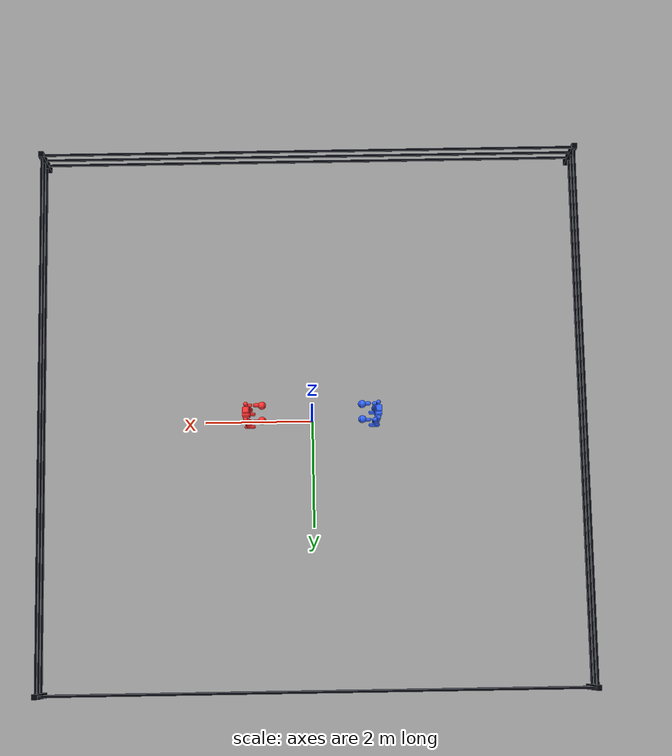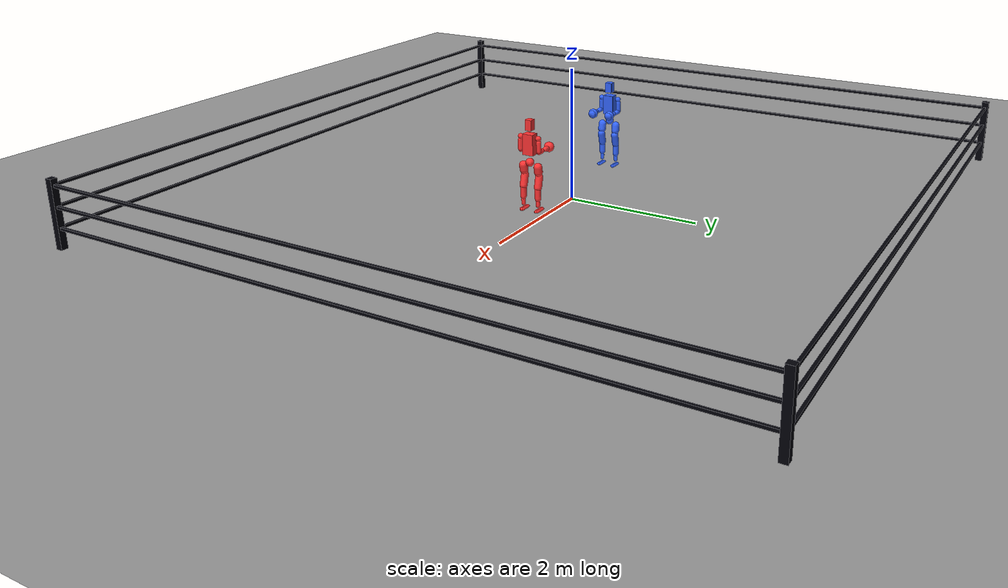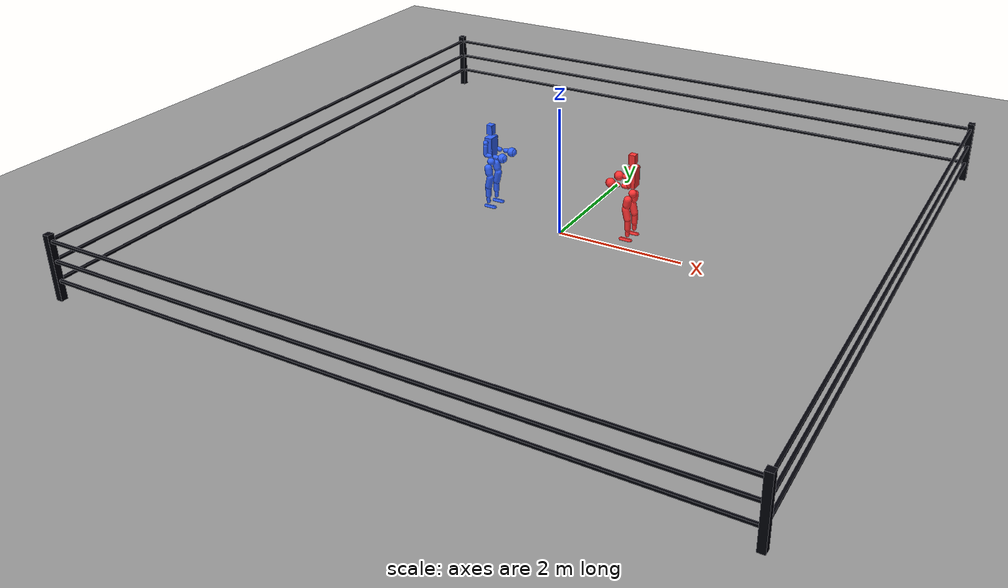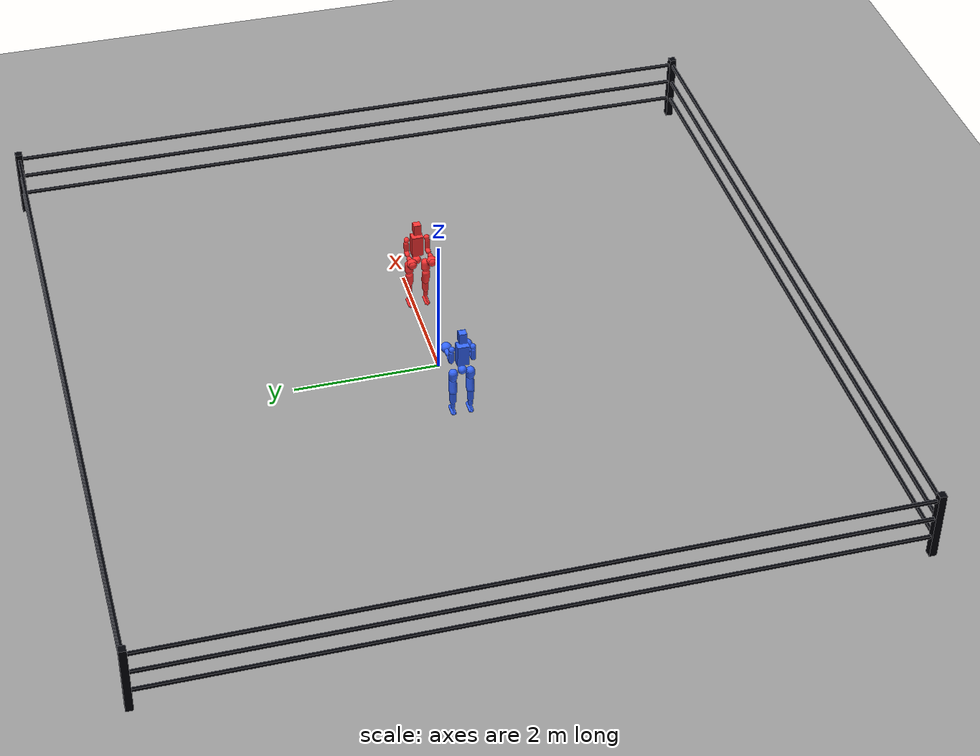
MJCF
<?xml version='1.0' encoding='utf-8'?>
<mujoco model="dual_g1_boxing">
  <compiler angle="radian" autolimits="true" />
  <option timestep="0.0020833333" integrator="implicitfast" cone="pyramidal" impratio="1" tolerance="1e-06" ls_tolerance="0.01" ccd_iterations="50" />
  <default>
    <geom solimp="0.9 0.95 0.001" solref="0.02 1" />
    <default class="g1">
      <geom condim="3" friction="1.0 0.005 0.0001" contype="0" conaffinity="0" />
      <default class="me">
        <geom contype="1" conaffinity="3" rgba="0.2 0.4 1.0 1" material="me" />
      </default>
      <default class="foe">
        <geom contype="2" conaffinity="3" rgba="1.0 0.2 0.2 1" material="foe" />
      </default>
    </default>
  </default>
  <visual>
    <global offwidth="1600" offheight="900" fovy="45" azimuth="90" elevation="-26.57" />
    <quality shadowsize="4096" />
    <headlight ambient="0.65 0.65 0.65" diffuse="0.1 0.1 0.1" specular="0 0 0" />
    <map fogstart="30" fogend="90" shadowclip="2" shadowscale="0.6" />
    <rgba fog="0.953 0.957 0.965 1" haze="0.953 0.957 0.965 1" />
  </visual>
  <statistic center="0 0 0.9" extent="8.113" />
  <asset>
    <texture type="skybox" builtin="flat" rgb1="0.953 0.957 0.965" rgb2="0.953 0.957 0.965" width="32" height="32" />
    <material name="floor" rgba="0.6 0.6 0.6 1" specular="0" shininess="0" reflectance="0" />
    <material name="ring" rgba="0.002 0.004 0.03 1" specular="0" shininess="0" reflectance="0" />
    <material name="me" rgba="0.2 0.4 1.0 1" specular="0" shininess="0" reflectance="0" />
    <material name="foe" rgba="1.0 0.2 0.2 1" specular="0" shininess="0" reflectance="0" />
  </asset>
  <worldbody>
    <light name="sun" directional="true" dir="0.55667 0.32139 -0.76604" diffuse="0.5 0.5 0.5" specular="0 0 0" castshadow="true" />
    <geom name="floor" type="plane" pos="0 0 0" size="200 200 0.1" material="floor" contype="3" conaffinity="3" condim="3" friction="0.5 0.005 0.0001" />
    <geom name="wall_ring0" type="box" pos="0 -5.0 0.3" size="5.0 0.02 0.02" contype="0" conaffinity="0" material="ring" rgba="0.002 0.004 0.03 1" />
    <geom name="wall_ring1" type="box" pos="0 5.0 0.3" size="5.0 0.02 0.02" contype="0" conaffinity="0" material="ring" rgba="0.002 0.004 0.03 1" />
    <geom name="wall_ring2" type="box" pos="-5.0 0 0.3" size="0.02 5.0 0.02" contype="0" conaffinity="0" material="ring" rgba="0.002 0.004 0.03 1" />
    <geom name="wall_ring3" type="box" pos="5.0 0 0.3" size="0.02 5.0 0.02" contype="0" conaffinity="0" material="ring" rgba="0.002 0.004 0.03 1" />
    <geom name="wall_ring4" type="box" pos="0 -5.0 0.6" size="5.0 0.02 0.02" contype="0" conaffinity="0" material="ring" rgba="0.002 0.004 0.03 1" />
    <geom name="wall_ring5" type="box" pos="0 5.0 0.6" size="5.0 0.02 0.02" contype="0" conaffinity="0" material="ring" rgba="0.002 0.004 0.03 1" />
    <geom name="wall_ring6" type="box" pos="-5.0 0 0.6" size="0.02 5.0 0.02" contype="0" conaffinity="0" material="ring" rgba="0.002 0.004 0.03 1" />
    <geom name="wall_ring7" type="box" pos="5.0 0 0.6" size="0.02 5.0 0.02" contype="0" conaffinity="0" material="ring" rgba="0.002 0.004 0.03 1" />
    <geom name="wall_ring8" type="box" pos="0 -5.0 0.9" size="5.0 0.02 0.02" contype="0" conaffinity="0" material="ring" rgba="0.002 0.004 0.03 1" />
    <geom name="wall_ring9" type="box" pos="0 5.0 0.9" size="5.0 0.02 0.02" contype="0" conaffinity="0" material="ring" rgba="0.002 0.004 0.03 1" />
    <geom name="wall_ring10" type="box" pos="-5.0 0 0.9" size="0.02 5.0 0.02" contype="0" conaffinity="0" material="ring" rgba="0.002 0.004 0.03 1" />
    <geom name="wall_ring11" type="box" pos="5.0 0 0.9" size="0.02 5.0 0.02" contype="0" conaffinity="0" material="ring" rgba="0.002 0.004 0.03 1" />
    <geom name="wall_ring12" type="box" pos="-5.0 -5.0 0.5" size="0.05 0.05 0.5" contype="0" conaffinity="0" material="ring" rgba="0.002 0.004 0.03 1" />
    <geom name="wall_ring13" type="box" pos="-5.0 5.0 0.5" size="0.05 0.05 0.5" contype="0" conaffinity="0" material="ring" rgba="0.002 0.004 0.03 1" />
    <geom name="wall_ring14" type="box" pos="5.0 -5.0 0.5" size="0.05 0.05 0.5" contype="0" conaffinity="0" material="ring" rgba="0.002 0.004 0.03 1" />
    <geom name="wall_ring15" type="box" pos="5.0 5.0 0.5" size="0.05 0.05 0.5" contype="0" conaffinity="0" material="ring" rgba="0.002 0.004 0.03 1" />
    <body name="me_pelvis" pos="-1.2 0.0 1.0" childclass="me">
      <freejoint name="me_root" />
      <inertial pos="0 0 -0.07605" quat="1 0 -0.000399148 0" mass="3.813" diaginertia="0.010549 0.0093089 0.0079184" />
      <geom name="me_pelvis_collision" class="me" type="sphere" size="0.06" pos="0 0 -0.07" />
      <body name="me_left_hip_pitch_link" pos="0 0.064452 -0.1027">
        <inertial pos="0.002741 0.047791 -0.02606" quat="0.954862 0.293964 0.0302556 0.030122" mass="1.35" diaginertia="0.00181517 0.00153422 0.00116212" />
        <joint name="me_left_hip_pitch_joint" type="hinge" pos="0 0 0" axis="0 1 0" range="-2.5307 2.8798" limited="true" actuatorfrcrange="-88 88" armature="0.010177520" stiffness="0" damping="0" frictionloss="0" solreflimit="-10000 -10" solimplimit="0.9 0.95 0.001" />
        <body name="me_left_hip_roll_link" pos="0 0.052 -0.030465" quat="0.996179 0 -0.0873386 0">
          <inertial pos="0.029812 -0.001045 -0.087934" quat="0.977808 -1.97119e-05 0.205576 -0.0403793" mass="1.52" diaginertia="0.00254986 0.00241169 0.00148755" />
          <joint name="me_left_hip_roll_joint" type="hinge" pos="0 0 0" axis="1 0 0" range="-0.5236 2.9671" limited="true" actuatorfrcrange="-88 88" armature="0.025101925" stiffness="0" damping="0" frictionloss="0" solreflimit="-10000 -10" solimplimit="0.9 0.95 0.001" />
          <geom name="me_left_hip_collision" class="me" type="capsule" size="0.06" fromto="0.02 0 0 0.02 0 -0.08" />
          <body name="me_left_hip_yaw_link" pos="0.025001 0 -0.12412">
            <inertial pos="-0.057709 -0.010981 -0.15078" quat="0.600598 0.15832 0.223482 0.751181" mass="1.702" diaginertia="0.00776166 0.00717575 0.00160139" />
            <joint name="me_left_hip_yaw_joint" type="hinge" pos="0 0 0" axis="0 0 1" range="-2.7576 2.7576" limited="true" actuatorfrcrange="-88 88" armature="0.010177520" stiffness="0" damping="0" frictionloss="0" solreflimit="-10000 -10" solimplimit="0.9 0.95 0.001" />
            <geom name="me_left_thigh_collision" class="me" type="capsule" size="0.055" fromto="-0.0 0 -0.03 -0.06 0 -0.17" />
            <body name="me_left_knee_link" pos="-0.078273 0.0021489 -0.17734" quat="0.996179 0 0.0873386 0">
              <inertial pos="0.005457 0.003964 -0.12074" quat="0.923418 -0.0327699 0.0158246 0.382067" mass="1.932" diaginertia="0.0113804 0.0112778 0.00146458" />
              <joint name="me_left_knee_joint" type="hinge" pos="0 0 0" axis="0 1 0" range="-0.087267 2.8798" limited="true" actuatorfrcrange="-139 139" armature="0.025101925" stiffness="0" damping="0" frictionloss="0" solreflimit="-10000 -10" solimplimit="0.9 0.95 0.001" />
              <geom name="me_left_shin_collision" class="me" type="capsule" size="0.045" fromto="0.01 0 0 0.01 0 -0.15" />
              <geom name="me_left_linkage_brace_collision" class="me" type="capsule" size="0.03" fromto="0.01 0 -0.2 0.01 0 -0.255" />
              <body name="me_left_ankle_pitch_link" pos="0 -9.4445e-05 -0.30001">
                <inertial pos="-0.007269 0 0.011137" quat="0.603053 0.369225 0.369225 0.603053" mass="0.074" diaginertia="1.89e-05 1.40805e-05 6.9195e-06" />
                <joint name="me_left_ankle_pitch_joint" type="hinge" pos="0 0 0" axis="0 1 0" range="-0.87267 0.5236" limited="true" actuatorfrcrange="-50 50" armature="0.00721945" stiffness="0" damping="0" frictionloss="0" solreflimit="-10000 -10" solimplimit="0.9 0.95 0.001" />
                <body name="me_left_ankle_roll_link" pos="0 0 -0.017558">
                  <inertial pos="0.026505 0 -0.016425" quat="-0.000481092 0.728482 -0.000618967 0.685065" mass="0.608" diaginertia="0.00167218 0.0016161 0.000217621" />
                  <joint name="me_left_ankle_roll_joint" type="hinge" pos="0 0 0" axis="1 0 0" range="-0.2618 0.2618" limited="true" actuatorfrcrange="-50 50" armature="0.00721945" stiffness="0" damping="0" frictionloss="0" solreflimit="-10000 -10" solimplimit="0.9 0.95 0.001" />
                  <geom name="me_left_foot0_collision" class="me" type="capsule" size="0.02" fromto="-0.035 -0.015 -0.015 0.115 -0.015 -0.015" />
                  <geom name="me_left_foot1_collision" class="me" type="capsule" size="0.02" fromto="-0.047 0 -0.015 0.126 0 -0.015" />
                  <geom name="me_left_foot2_collision" class="me" type="capsule" size="0.02" fromto="-0.035 0.015 -0.015 0.115 0.015 -0.015" />
                </body>
              </body>
            </body>
          </body>
        </body>
      </body>
      <body name="me_right_hip_pitch_link" pos="0 -0.064452 -0.1027">
        <inertial pos="0.002741 -0.047791 -0.02606" quat="0.954862 -0.293964 0.0302556 -0.030122" mass="1.35" diaginertia="0.00181517 0.00153422 0.00116212" />
        <joint name="me_right_hip_pitch_joint" type="hinge" pos="0 0 0" axis="0 1 0" range="-2.5307 2.8798" limited="true" actuatorfrcrange="-88 88" armature="0.010177520" stiffness="0" damping="0" frictionloss="0" solreflimit="-10000 -10" solimplimit="0.9 0.95 0.001" />
        <body name="me_right_hip_roll_link" pos="0 -0.052 -0.030465" quat="0.996179 0 -0.0873386 0">
          <inertial pos="0.029812 0.001045 -0.087934" quat="0.977808 1.97119e-05 0.205576 0.0403793" mass="1.52" diaginertia="0.00254986 0.00241169 0.00148755" />
          <joint name="me_right_hip_roll_joint" type="hinge" pos="0 0 0" axis="1 0 0" range="-2.9671 0.5236" limited="true" actuatorfrcrange="-88 88" armature="0.025101925" stiffness="0" damping="0" frictionloss="0" solreflimit="-10000 -10" solimplimit="0.9 0.95 0.001" />
          <geom name="me_right_hip_collision" class="me" type="capsule" size="0.06" fromto="0.02 0 0 0.02 0 -0.08" />
          <body name="me_right_hip_yaw_link" pos="0.025001 0 -0.12412">
            <inertial pos="-0.057709 0.010981 -0.15078" quat="0.751181 0.223482 0.15832 0.600598" mass="1.702" diaginertia="0.00776166 0.00717575 0.00160139" />
            <joint name="me_right_hip_yaw_joint" type="hinge" pos="0 0 0" axis="0 0 1" range="-2.7576 2.7576" limited="true" actuatorfrcrange="-88 88" armature="0.010177520" stiffness="0" damping="0" frictionloss="0" solreflimit="-10000 -10" solimplimit="0.9 0.95 0.001" />
            <geom name="me_right_thigh_collision" class="me" type="capsule" size="0.055" fromto="-0.0 0 -0.03 -0.06 0 -0.17" />
            <body name="me_right_knee_link" pos="-0.078273 -0.0021489 -0.17734" quat="0.996179 0 0.0873386 0">
              <inertial pos="0.005457 -0.003964 -0.12074" quat="0.923439 0.0345276 0.0116333 -0.382012" mass="1.932" diaginertia="0.011374 0.0112843 0.00146452" />
              <joint name="me_right_knee_joint" type="hinge" pos="0 0 0" axis="0 1 0" range="-0.087267 2.8798" limited="true" actuatorfrcrange="-139 139" armature="0.025101925" stiffness="0" damping="0" frictionloss="0" solreflimit="-10000 -10" solimplimit="0.9 0.95 0.001" />
              <geom name="me_right_shin_collision" class="me" type="capsule" size="0.045" fromto="0.01 0 0 0.01 0 -0.15" />
              <geom name="me_right_linkage_brace_collision" class="me" type="capsule" size="0.03" fromto="0.01 0 -0.2 0.01 0 -0.255" />
              <body name="me_right_ankle_pitch_link" pos="0 9.4445e-05 -0.30001">
                <inertial pos="-0.007269 0 0.011137" quat="0.603053 0.369225 0.369225 0.603053" mass="0.074" diaginertia="1.89e-05 1.40805e-05 6.9195e-06" />
                <joint name="me_right_ankle_pitch_joint" type="hinge" pos="0 0 0" axis="0 1 0" range="-0.87267 0.5236" limited="true" actuatorfrcrange="-50 50" armature="0.00721945" stiffness="0" damping="0" frictionloss="0" solreflimit="-10000 -10" solimplimit="0.9 0.95 0.001" />
                <body name="me_right_ankle_roll_link" pos="0 0 -0.017558">
                  <inertial pos="0.026505 0 -0.016425" quat="0.000481092 0.728482 0.000618967 0.685065" mass="0.608" diaginertia="0.00167218 0.0016161 0.000217621" />
                  <joint name="me_right_ankle_roll_joint" type="hinge" pos="0 0 0" axis="1 0 0" range="-0.2618 0.2618" limited="true" actuatorfrcrange="-50 50" armature="0.00721945" stiffness="0" damping="0" frictionloss="0" solreflimit="-10000 -10" solimplimit="0.9 0.95 0.001" />
                  <geom name="me_right_foot0_collision" class="me" type="capsule" size="0.02" fromto="-0.035 -0.015 -0.015 0.115 -0.015 -0.015" />
                  <geom name="me_right_foot1_collision" class="me" type="capsule" size="0.02" fromto="-0.047 0 -0.015 0.126 0 -0.015" />
                  <geom name="me_right_foot2_collision" class="me" type="capsule" size="0.02" fromto="-0.035 0.015 -0.015 0.115 0.015 -0.015" />
                </body>
              </body>
            </body>
          </body>
        </body>
      </body>
      <body name="me_waist_yaw_link">
        <inertial pos="0.003964 0 0.018769" quat="-0.0178291 0.628464 0.0282471 0.777121" mass="0.244" diaginertia="0.000158561 0.000124229 9.67669e-05" />
        <joint name="me_waist_yaw_joint" type="hinge" pos="0 0 0" axis="0 0 1" range="-2.618 2.618" limited="true" actuatorfrcrange="-88 88" armature="0.010177520" stiffness="0" damping="0" frictionloss="0" solreflimit="-10000 -10" solimplimit="0.9 0.95 0.001" />
        <body name="me_waist_roll_link" pos="-0.0039635 0 0.035">
          <inertial pos="0 -0.000236 0.010111" quat="0.99979 0.020492 0 0" mass="0.047" diaginertia="7.515e-06 6.40206e-06 3.98394e-06" />
          <joint name="me_waist_roll_joint" type="hinge" pos="0 0 0" axis="1 0 0" range="-0.52 0.52" limited="true" actuatorfrcrange="-50 50" armature="0.00721945" stiffness="0" damping="0" frictionloss="0" solreflimit="-10000 -10" solimplimit="0.9 0.95 0.001" />
          <body name="me_torso_link" pos="0 0 0.019">
            <inertial pos="0.00331658 0.000261533 0.179856" quat="0.999831 0.000376204 0.0179895 -0.00377704" mass="0.9598" diaginertia="0.012407 0.0111951 0.00325382" />
            <joint name="me_waist_pitch_joint" type="hinge" pos="0 0 0" axis="0 1 0" range="-0.52 0.52" limited="true" actuatorfrcrange="-50 50" armature="0.00721945" stiffness="0" damping="0" frictionloss="0" solreflimit="-10000 -10" solimplimit="0.9 0.95 0.001" />
            <geom name="me_torso_collision" class="me" type="box" size="0.0065 0.08 0.15" pos="0.0685 0 0.14" />
            <body name="me_head_link" pos="0.015 0 0.43">
              <inertial pos="0 0 0" mass="0.01" diaginertia="1.44e-05 1.44e-05 1.44e-05" />
              <geom name="me_head_collision" class="me" type="box" size="0.005 0.05 0.075" pos="0.045 0 -0.015" />
              <body name="me_head_back_link" pos="0 0 0">
                <inertial pos="0 0 0" mass="0.09" diaginertia="0.0001296 0.0001296 0.0001296" />
                <geom name="me_head_collision_back" class="me" type="box" size="0.045 0.05 0.075" pos="-0.005 0 -0.015" rgba="0.2 0.4 1.0 1" />
              </body>
            </body>
            <body name="me_left_shoulder_pitch_link" pos="0.0039563 0.10022 0.23778" quat="0.990264 0.139201 1.38722e-05 -9.86868e-05">
              <inertial pos="0 0.035892 -0.011628" quat="0.654152 0.0130458 -0.326267 0.68225" mass="0.718" diaginertia="0.000465864 0.000432842 0.000406394" />
              <joint name="me_left_shoulder_pitch_joint" type="hinge" pos="0 0 0" axis="0 1 0" range="-3.0892 2.6704" limited="true" actuatorfrcrange="-25 25" armature="0.003609725" stiffness="0" damping="0" frictionloss="0" solreflimit="-10000 -10" solimplimit="0.9 0.95 0.001" />
              <body name="me_left_shoulder_roll_link" pos="0 0.038 -0.013831" quat="0.990268 -0.139172 0 0">
                <inertial pos="-0.000227 0.00727 -0.063243" quat="0.701256 -0.0196223 -0.00710317 0.712604" mass="0.643" diaginertia="0.000691311 0.000618011 0.000388977" />
                <joint name="me_left_shoulder_roll_joint" type="hinge" pos="0 0 0" axis="1 0 0" range="-1.5882 2.2515" limited="true" actuatorfrcrange="-25 25" armature="0.003609725" stiffness="0" damping="0" frictionloss="0" solreflimit="-10000 -10" solimplimit="0.9 0.95 0.001" />
                <geom name="me_left_shoulder_roll_collision" class="me" type="sphere" size="0.04" />
                <body name="me_left_shoulder_yaw_link" pos="0 0.00624 -0.1032">
                  <inertial pos="0.010773 -0.002949 -0.072009" quat="0.716879 -0.0964829 -0.0679942 0.687134" mass="1.835" diaginertia="0.00265467 0.00258042 0.00100165" />
                  <joint name="me_left_shoulder_yaw_joint" type="hinge" pos="0 0 0" axis="0 0 1" range="-2.618 2.618" limited="true" actuatorfrcrange="-25 25" armature="0.003609725" stiffness="0" damping="0" frictionloss="0" solreflimit="-10000 -10" solimplimit="0.9 0.95 0.001" />
                  <geom name="me_left_shoulder_yaw_collision" class="me" type="capsule" size="0.035" fromto="0 0 -0.08 0 0 0.05" />
                  <body name="me_left_elbow_link" pos="0.015783 0 -0.080518">
                    <inertial pos="0.064956 0.004454 -0.010062" quat="0.541765 0.636132 0.388821 0.388129" mass="1.5" diaginertia="0.00110759 0.00105403 0.000648382" />
                    <joint name="me_left_elbow_joint" type="hinge" pos="0 0 0" axis="0 1 0" range="-1.0472 2.0944" limited="true" actuatorfrcrange="-25 25" armature="0.003609725" stiffness="0" damping="0" frictionloss="0" solreflimit="-10000 -10" solimplimit="0.9 0.95 0.001" />
                    <geom name="me_left_elbow_yaw_collision" class="me" type="capsule" size="0.035" fromto="-0.01 0 -0.01 0.06 0 -0.01" />
                    <body name="me_left_wrist_roll_link" pos="0.1 0.00188791 -0.01">
                      <inertial pos="0.0171394 0.000537591 4.8864e-07" quat="0.575338 0.411667 -0.574906 0.411094" mass="0.085445" diaginertia="5.48211e-05 4.96646e-05 3.57798e-05" />
                      <body name="me_left_wrist_pitch_link" pos="0.038 0 0">
                        <inertial pos="0.0229999 -0.00111685 -0.00111658" quat="0.249998 0.661363 0.293036 0.643608" mass="1.21012" diaginertia="0.00107588 0.00107468 0.00041162" />
                        <geom name="me_left_wrist_collision" class="me" type="capsule" size="0.035" fromto="0.01 0 0 0.06 0 0" />
                        <body name="me_left_wrist_yaw_link" pos="0.046 0 0">
                          <inertial pos="0.0708244 0.000191745 0.00161742" quat="0.510571 0.526295 0.468078 0.493188" mass="0.31822" diaginertia="0.00080764 0.00069999 0.000184457" />
                          <geom name="me_left_hand_collision" class="me" type="sphere" size="0.07" pos="0.095 -0.01 0" rgba="0.2 0.4 1.0 1" />
                          <body name="me_left_wrist_yaw_back_link" pos="0 0 0">
                            <inertial pos="0.0708244 0.000191745 0.00161742" quat="0.510571 0.526295 0.468078 0.493188" mass="0.31822" diaginertia="0.00080764 0.00069999 0.000184457" />
                            <geom name="me_left_hand_collision_back" class="me" type="sphere" size="0.072083" pos="0.091 -0.01 0" rgba="0.2 0.4 1.0 1" />
                          </body>
                        </body>
                      </body>
                    </body>
                  </body>
                </body>
              </body>
            </body>
            <body name="me_right_shoulder_pitch_link" pos="0.0039563 -0.10021 0.23778" quat="0.990264 -0.139201 1.38722e-05 9.86868e-05">
              <inertial pos="0 -0.035892 -0.011628" quat="0.68225 -0.326267 0.0130458 0.654152" mass="0.718" diaginertia="0.000465864 0.000432842 0.000406394" />
              <joint name="me_right_shoulder_pitch_joint" type="hinge" pos="0 0 0" axis="0 1 0" range="-3.0892 2.6704" limited="true" actuatorfrcrange="-25 25" armature="0.003609725" stiffness="0" damping="0" frictionloss="0" solreflimit="-10000 -10" solimplimit="0.9 0.95 0.001" />
              <body name="me_right_shoulder_roll_link" pos="0 -0.038 -0.013831" quat="0.990268 0.139172 0 0">
                <inertial pos="-0.000227 -0.00727 -0.063243" quat="0.712604 -0.00710317 -0.0196223 0.701256" mass="0.643" diaginertia="0.000691311 0.000618011 0.000388977" />
                <joint name="me_right_shoulder_roll_joint" type="hinge" pos="0 0 0" axis="1 0 0" range="-2.2515 1.5882" limited="true" actuatorfrcrange="-25 25" armature="0.003609725" stiffness="0" damping="0" frictionloss="0" solreflimit="-10000 -10" solimplimit="0.9 0.95 0.001" />
                <geom name="me_right_shoulder_roll_collision" class="me" type="sphere" size="0.04" />
                <body name="me_right_shoulder_yaw_link" pos="0 -0.00624 -0.1032">
                  <inertial pos="0.010773 0.002949 -0.072009" quat="0.687134 -0.0679942 -0.0964829 0.716879" mass="1.835" diaginertia="0.00265467 0.00258042 0.00100165" />
                  <joint name="me_right_shoulder_yaw_joint" type="hinge" pos="0 0 0" axis="0 0 1" range="-2.618 2.618" limited="true" actuatorfrcrange="-25 25" armature="0.003609725" stiffness="0" damping="0" frictionloss="0" solreflimit="-10000 -10" solimplimit="0.9 0.95 0.001" />
                  <geom name="me_right_shoulder_yaw_collision" class="me" type="capsule" size="0.035" fromto="0 0 -0.08 0 0 0.05" />
                  <body name="me_right_elbow_link" pos="0.015783 0 -0.080518">
                    <inertial pos="0.064956 -0.004454 -0.010062" quat="0.388129 0.388821 0.636132 0.541765" mass="1.5" diaginertia="0.00110759 0.00105403 0.000648382" />
                    <joint name="me_right_elbow_joint" type="hinge" pos="0 0 0" axis="0 1 0" range="-1.0472 2.0944" limited="true" actuatorfrcrange="-25 25" armature="0.003609725" stiffness="0" damping="0" frictionloss="0" solreflimit="-10000 -10" solimplimit="0.9 0.95 0.001" />
                    <geom name="me_right_elbow_yaw_collision" class="me" type="capsule" size="0.035" fromto="-0.01 0 -0.01 0.06 0 -0.01" />
                    <body name="me_right_wrist_roll_link" pos="0.1 -0.00188791 -0.01">
                      <inertial pos="0.0171394 -0.000537591 4.8864e-07" quat="0.411667 0.575338 -0.411094 0.574906" mass="0.085445" diaginertia="5.48211e-05 4.96646e-05 3.57798e-05" />
                      <body name="me_right_wrist_pitch_link" pos="0.038 0 0">
                        <inertial pos="0.0229999 0.00111685 -0.00111658" quat="0.643608 0.293036 0.661363 0.249998" mass="1.21012" diaginertia="0.00107588 0.00107468 0.00041162" />
                        <geom name="me_right_wrist_collision" class="me" type="capsule" size="0.035" fromto="0.01 0 0 0.06 0 0" />
                        <body name="me_right_wrist_yaw_link" pos="0.046 0 0">
                          <inertial pos="0.0708244 -0.000191745 0.00161742" quat="0.493188 0.468078 0.526295 0.510571" mass="0.31822" diaginertia="0.00080764 0.00069999 0.000184457" />
                          <geom name="me_right_hand_collision" class="me" type="sphere" size="0.07" pos="0.095 0.01 0" rgba="0.2 0.4 1.0 1" />
                          <body name="me_right_wrist_yaw_back_link" pos="0 0 0">
                            <inertial pos="0.0708244 -0.000191745 0.00161742" quat="0.493188 0.468078 0.526295 0.510571" mass="0.31822" diaginertia="0.00080764 0.00069999 0.000184457" />
                            <geom name="me_right_hand_collision_back" class="me" type="sphere" size="0.072083" pos="0.091 0.01 0" rgba="0.2 0.4 1.0 1" />
                          </body>
                        </body>
                      </body>
                    </body>
                  </body>
                </body>
              </body>
            </body>
            <body name="me_torso_back_link" pos="0 0 0">
              <inertial pos="0.00331658 0.000261533 0.179856" quat="0.999831 0.000376204 0.0179895 -0.00377704" mass="8.6382" diaginertia="0.111663 0.100756 0.0292844" />
              <geom name="me_torso_collision_back" class="me" type="box" size="0.0585 0.08 0.15" pos="0.0035 0 0.14" rgba="0.2 0.4 1.0 1" />
            </body>
          </body>
        </body>
      </body>
    </body>
    <body name="foe_pelvis" pos="1.2 0.0 1.0" childclass="foe" quat="0 0 0 1">
      <freejoint name="foe_root" />
      <inertial pos="0 0 -0.07605" quat="1 0 -0.000399148 0" mass="3.813" diaginertia="0.010549 0.0093089 0.0079184" />
      <geom name="foe_pelvis_collision" class="foe" type="sphere" size="0.06" pos="0 0 -0.07" />
      <body name="foe_left_hip_pitch_link" pos="0 0.064452 -0.1027">
        <inertial pos="0.002741 0.047791 -0.02606" quat="0.954862 0.293964 0.0302556 0.030122" mass="1.35" diaginertia="0.00181517 0.00153422 0.00116212" />
        <joint name="foe_left_hip_pitch_joint" type="hinge" pos="0 0 0" axis="0 1 0" range="-2.5307 2.8798" limited="true" actuatorfrcrange="-88 88" armature="0.010177520" stiffness="0" damping="0" frictionloss="0" solreflimit="-10000 -10" solimplimit="0.9 0.95 0.001" />
        <body name="foe_left_hip_roll_link" pos="0 0.052 -0.030465" quat="0.996179 0 -0.0873386 0">
          <inertial pos="0.029812 -0.001045 -0.087934" quat="0.977808 -1.97119e-05 0.205576 -0.0403793" mass="1.52" diaginertia="0.00254986 0.00241169 0.00148755" />
          <joint name="foe_left_hip_roll_joint" type="hinge" pos="0 0 0" axis="1 0 0" range="-0.5236 2.9671" limited="true" actuatorfrcrange="-88 88" armature="0.025101925" stiffness="0" damping="0" frictionloss="0" solreflimit="-10000 -10" solimplimit="0.9 0.95 0.001" />
          <geom name="foe_left_hip_collision" class="foe" type="capsule" size="0.06" fromto="0.02 0 0 0.02 0 -0.08" />
          <body name="foe_left_hip_yaw_link" pos="0.025001 0 -0.12412">
            <inertial pos="-0.057709 -0.010981 -0.15078" quat="0.600598 0.15832 0.223482 0.751181" mass="1.702" diaginertia="0.00776166 0.00717575 0.00160139" />
            <joint name="foe_left_hip_yaw_joint" type="hinge" pos="0 0 0" axis="0 0 1" range="-2.7576 2.7576" limited="true" actuatorfrcrange="-88 88" armature="0.010177520" stiffness="0" damping="0" frictionloss="0" solreflimit="-10000 -10" solimplimit="0.9 0.95 0.001" />
            <geom name="foe_left_thigh_collision" class="foe" type="capsule" size="0.055" fromto="-0.0 0 -0.03 -0.06 0 -0.17" />
            <body name="foe_left_knee_link" pos="-0.078273 0.0021489 -0.17734" quat="0.996179 0 0.0873386 0">
              <inertial pos="0.005457 0.003964 -0.12074" quat="0.923418 -0.0327699 0.0158246 0.382067" mass="1.932" diaginertia="0.0113804 0.0112778 0.00146458" />
              <joint name="foe_left_knee_joint" type="hinge" pos="0 0 0" axis="0 1 0" range="-0.087267 2.8798" limited="true" actuatorfrcrange="-139 139" armature="0.025101925" stiffness="0" damping="0" frictionloss="0" solreflimit="-10000 -10" solimplimit="0.9 0.95 0.001" />
              <geom name="foe_left_shin_collision" class="foe" type="capsule" size="0.045" fromto="0.01 0 0 0.01 0 -0.15" />
              <geom name="foe_left_linkage_brace_collision" class="foe" type="capsule" size="0.03" fromto="0.01 0 -0.2 0.01 0 -0.255" />
              <body name="foe_left_ankle_pitch_link" pos="0 -9.4445e-05 -0.30001">
                <inertial pos="-0.007269 0 0.011137" quat="0.603053 0.369225 0.369225 0.603053" mass="0.074" diaginertia="1.89e-05 1.40805e-05 6.9195e-06" />
                <joint name="foe_left_ankle_pitch_joint" type="hinge" pos="0 0 0" axis="0 1 0" range="-0.87267 0.5236" limited="true" actuatorfrcrange="-50 50" armature="0.00721945" stiffness="0" damping="0" frictionloss="0" solreflimit="-10000 -10" solimplimit="0.9 0.95 0.001" />
                <body name="foe_left_ankle_roll_link" pos="0 0 -0.017558">
                  <inertial pos="0.026505 0 -0.016425" quat="-0.000481092 0.728482 -0.000618967 0.685065" mass="0.608" diaginertia="0.00167218 0.0016161 0.000217621" />
                  <joint name="foe_left_ankle_roll_joint" type="hinge" pos="0 0 0" axis="1 0 0" range="-0.2618 0.2618" limited="true" actuatorfrcrange="-50 50" armature="0.00721945" stiffness="0" damping="0" frictionloss="0" solreflimit="-10000 -10" solimplimit="0.9 0.95 0.001" />
                  <geom name="foe_left_foot0_collision" class="foe" type="capsule" size="0.02" fromto="-0.035 -0.015 -0.015 0.115 -0.015 -0.015" />
                  <geom name="foe_left_foot1_collision" class="foe" type="capsule" size="0.02" fromto="-0.047 0 -0.015 0.126 0 -0.015" />
                  <geom name="foe_left_foot2_collision" class="foe" type="capsule" size="0.02" fromto="-0.035 0.015 -0.015 0.115 0.015 -0.015" />
                </body>
              </body>
            </body>
          </body>
        </body>
      </body>
      <body name="foe_right_hip_pitch_link" pos="0 -0.064452 -0.1027">
        <inertial pos="0.002741 -0.047791 -0.02606" quat="0.954862 -0.293964 0.0302556 -0.030122" mass="1.35" diaginertia="0.00181517 0.00153422 0.00116212" />
        <joint name="foe_right_hip_pitch_joint" type="hinge" pos="0 0 0" axis="0 1 0" range="-2.5307 2.8798" limited="true" actuatorfrcrange="-88 88" armature="0.010177520" stiffness="0" damping="0" frictionloss="0" solreflimit="-10000 -10" solimplimit="0.9 0.95 0.001" />
        <body name="foe_right_hip_roll_link" pos="0 -0.052 -0.030465" quat="0.996179 0 -0.0873386 0">
          <inertial pos="0.029812 0.001045 -0.087934" quat="0.977808 1.97119e-05 0.205576 0.0403793" mass="1.52" diaginertia="0.00254986 0.00241169 0.00148755" />
          <joint name="foe_right_hip_roll_joint" type="hinge" pos="0 0 0" axis="1 0 0" range="-2.9671 0.5236" limited="true" actuatorfrcrange="-88 88" armature="0.025101925" stiffness="0" damping="0" frictionloss="0" solreflimit="-10000 -10" solimplimit="0.9 0.95 0.001" />
          <geom name="foe_right_hip_collision" class="foe" type="capsule" size="0.06" fromto="0.02 0 0 0.02 0 -0.08" />
          <body name="foe_right_hip_yaw_link" pos="0.025001 0 -0.12412">
            <inertial pos="-0.057709 0.010981 -0.15078" quat="0.751181 0.223482 0.15832 0.600598" mass="1.702" diaginertia="0.00776166 0.00717575 0.00160139" />
            <joint name="foe_right_hip_yaw_joint" type="hinge" pos="0 0 0" axis="0 0 1" range="-2.7576 2.7576" limited="true" actuatorfrcrange="-88 88" armature="0.010177520" stiffness="0" damping="0" frictionloss="0" solreflimit="-10000 -10" solimplimit="0.9 0.95 0.001" />
            <geom name="foe_right_thigh_collision" class="foe" type="capsule" size="0.055" fromto="-0.0 0 -0.03 -0.06 0 -0.17" />
            <body name="foe_right_knee_link" pos="-0.078273 -0.0021489 -0.17734" quat="0.996179 0 0.0873386 0">
              <inertial pos="0.005457 -0.003964 -0.12074" quat="0.923439 0.0345276 0.0116333 -0.382012" mass="1.932" diaginertia="0.011374 0.0112843 0.00146452" />
              <joint name="foe_right_knee_joint" type="hinge" pos="0 0 0" axis="0 1 0" range="-0.087267 2.8798" limited="true" actuatorfrcrange="-139 139" armature="0.025101925" stiffness="0" damping="0" frictionloss="0" solreflimit="-10000 -10" solimplimit="0.9 0.95 0.001" />
              <geom name="foe_right_shin_collision" class="foe" type="capsule" size="0.045" fromto="0.01 0 0 0.01 0 -0.15" />
              <geom name="foe_right_linkage_brace_collision" class="foe" type="capsule" size="0.03" fromto="0.01 0 -0.2 0.01 0 -0.255" />
              <body name="foe_right_ankle_pitch_link" pos="0 9.4445e-05 -0.30001">
                <inertial pos="-0.007269 0 0.011137" quat="0.603053 0.369225 0.369225 0.603053" mass="0.074" diaginertia="1.89e-05 1.40805e-05 6.9195e-06" />
                <joint name="foe_right_ankle_pitch_joint" type="hinge" pos="0 0 0" axis="0 1 0" range="-0.87267 0.5236" limited="true" actuatorfrcrange="-50 50" armature="0.00721945" stiffness="0" damping="0" frictionloss="0" solreflimit="-10000 -10" solimplimit="0.9 0.95 0.001" />
                <body name="foe_right_ankle_roll_link" pos="0 0 -0.017558">
                  <inertial pos="0.026505 0 -0.016425" quat="0.000481092 0.728482 0.000618967 0.685065" mass="0.608" diaginertia="0.00167218 0.0016161 0.000217621" />
                  <joint name="foe_right_ankle_roll_joint" type="hinge" pos="0 0 0" axis="1 0 0" range="-0.2618 0.2618" limited="true" actuatorfrcrange="-50 50" armature="0.00721945" stiffness="0" damping="0" frictionloss="0" solreflimit="-10000 -10" solimplimit="0.9 0.95 0.001" />
                  <geom name="foe_right_foot0_collision" class="foe" type="capsule" size="0.02" fromto="-0.035 -0.015 -0.015 0.115 -0.015 -0.015" />
                  <geom name="foe_right_foot1_collision" class="foe" type="capsule" size="0.02" fromto="-0.047 0 -0.015 0.126 0 -0.015" />
                  <geom name="foe_right_foot2_collision" class="foe" type="capsule" size="0.02" fromto="-0.035 0.015 -0.015 0.115 0.015 -0.015" />
                </body>
              </body>
            </body>
          </body>
        </body>
      </body>
      <body name="foe_waist_yaw_link">
        <inertial pos="0.003964 0 0.018769" quat="-0.0178291 0.628464 0.0282471 0.777121" mass="0.244" diaginertia="0.000158561 0.000124229 9.67669e-05" />
        <joint name="foe_waist_yaw_joint" type="hinge" pos="0 0 0" axis="0 0 1" range="-2.618 2.618" limited="true" actuatorfrcrange="-88 88" armature="0.010177520" stiffness="0" damping="0" frictionloss="0" solreflimit="-10000 -10" solimplimit="0.9 0.95 0.001" />
        <body name="foe_waist_roll_link" pos="-0.0039635 0 0.035">
          <inertial pos="0 -0.000236 0.010111" quat="0.99979 0.020492 0 0" mass="0.047" diaginertia="7.515e-06 6.40206e-06 3.98394e-06" />
          <joint name="foe_waist_roll_joint" type="hinge" pos="0 0 0" axis="1 0 0" range="-0.52 0.52" limited="true" actuatorfrcrange="-50 50" armature="0.00721945" stiffness="0" damping="0" frictionloss="0" solreflimit="-10000 -10" solimplimit="0.9 0.95 0.001" />
          <body name="foe_torso_link" pos="0 0 0.019">
            <inertial pos="0.00331658 0.000261533 0.179856" quat="0.999831 0.000376204 0.0179895 -0.00377704" mass="0.9598" diaginertia="0.012407 0.0111951 0.00325382" />
            <joint name="foe_waist_pitch_joint" type="hinge" pos="0 0 0" axis="0 1 0" range="-0.52 0.52" limited="true" actuatorfrcrange="-50 50" armature="0.00721945" stiffness="0" damping="0" frictionloss="0" solreflimit="-10000 -10" solimplimit="0.9 0.95 0.001" />
            <geom name="foe_torso_collision" class="foe" type="box" size="0.0065 0.08 0.15" pos="0.0685 0 0.14" />
            <body name="foe_head_link" pos="0.015 0 0.43">
              <inertial pos="0 0 0" mass="0.01" diaginertia="1.44e-05 1.44e-05 1.44e-05" />
              <geom name="foe_head_collision" class="foe" type="box" size="0.005 0.05 0.075" pos="0.045 0 -0.015" />
              <body name="foe_head_back_link" pos="0 0 0">
                <inertial pos="0 0 0" mass="0.09" diaginertia="0.0001296 0.0001296 0.0001296" />
                <geom name="foe_head_collision_back" class="foe" type="box" size="0.045 0.05 0.075" pos="-0.005 0 -0.015" rgba="1.0 0.2 0.2 1" />
              </body>
            </body>
            <body name="foe_left_shoulder_pitch_link" pos="0.0039563 0.10022 0.23778" quat="0.990264 0.139201 1.38722e-05 -9.86868e-05">
              <inertial pos="0 0.035892 -0.011628" quat="0.654152 0.0130458 -0.326267 0.68225" mass="0.718" diaginertia="0.000465864 0.000432842 0.000406394" />
              <joint name="foe_left_shoulder_pitch_joint" type="hinge" pos="0 0 0" axis="0 1 0" range="-3.0892 2.6704" limited="true" actuatorfrcrange="-25 25" armature="0.003609725" stiffness="0" damping="0" frictionloss="0" solreflimit="-10000 -10" solimplimit="0.9 0.95 0.001" />
              <body name="foe_left_shoulder_roll_link" pos="0 0.038 -0.013831" quat="0.990268 -0.139172 0 0">
                <inertial pos="-0.000227 0.00727 -0.063243" quat="0.701256 -0.0196223 -0.00710317 0.712604" mass="0.643" diaginertia="0.000691311 0.000618011 0.000388977" />
                <joint name="foe_left_shoulder_roll_joint" type="hinge" pos="0 0 0" axis="1 0 0" range="-1.5882 2.2515" limited="true" actuatorfrcrange="-25 25" armature="0.003609725" stiffness="0" damping="0" frictionloss="0" solreflimit="-10000 -10" solimplimit="0.9 0.95 0.001" />
                <geom name="foe_left_shoulder_roll_collision" class="foe" type="sphere" size="0.04" />
                <body name="foe_left_shoulder_yaw_link" pos="0 0.00624 -0.1032">
                  <inertial pos="0.010773 -0.002949 -0.072009" quat="0.716879 -0.0964829 -0.0679942 0.687134" mass="1.835" diaginertia="0.00265467 0.00258042 0.00100165" />
                  <joint name="foe_left_shoulder_yaw_joint" type="hinge" pos="0 0 0" axis="0 0 1" range="-2.618 2.618" limited="true" actuatorfrcrange="-25 25" armature="0.003609725" stiffness="0" damping="0" frictionloss="0" solreflimit="-10000 -10" solimplimit="0.9 0.95 0.001" />
                  <geom name="foe_left_shoulder_yaw_collision" class="foe" type="capsule" size="0.035" fromto="0 0 -0.08 0 0 0.05" />
                  <body name="foe_left_elbow_link" pos="0.015783 0 -0.080518">
                    <inertial pos="0.064956 0.004454 -0.010062" quat="0.541765 0.636132 0.388821 0.388129" mass="1.5" diaginertia="0.00110759 0.00105403 0.000648382" />
                    <joint name="foe_left_elbow_joint" type="hinge" pos="0 0 0" axis="0 1 0" range="-1.0472 2.0944" limited="true" actuatorfrcrange="-25 25" armature="0.003609725" stiffness="0" damping="0" frictionloss="0" solreflimit="-10000 -10" solimplimit="0.9 0.95 0.001" />
                    <geom name="foe_left_elbow_yaw_collision" class="foe" type="capsule" size="0.035" fromto="-0.01 0 -0.01 0.06 0 -0.01" />
                    <body name="foe_left_wrist_roll_link" pos="0.1 0.00188791 -0.01">
                      <inertial pos="0.0171394 0.000537591 4.8864e-07" quat="0.575338 0.411667 -0.574906 0.411094" mass="0.085445" diaginertia="5.48211e-05 4.96646e-05 3.57798e-05" />
                      <body name="foe_left_wrist_pitch_link" pos="0.038 0 0">
                        <inertial pos="0.0229999 -0.00111685 -0.00111658" quat="0.249998 0.661363 0.293036 0.643608" mass="1.21012" diaginertia="0.00107588 0.00107468 0.00041162" />
                        <geom name="foe_left_wrist_collision" class="foe" type="capsule" size="0.035" fromto="0.01 0 0 0.06 0 0" />
                        <body name="foe_left_wrist_yaw_link" pos="0.046 0 0">
                          <inertial pos="0.0708244 0.000191745 0.00161742" quat="0.510571 0.526295 0.468078 0.493188" mass="0.31822" diaginertia="0.00080764 0.00069999 0.000184457" />
                          <geom name="foe_left_hand_collision" class="foe" type="sphere" size="0.07" pos="0.095 -0.01 0" rgba="1.0 0.2 0.2 1" />
                          <body name="foe_left_wrist_yaw_back_link" pos="0 0 0">
                            <inertial pos="0.0708244 0.000191745 0.00161742" quat="0.510571 0.526295 0.468078 0.493188" mass="0.31822" diaginertia="0.00080764 0.00069999 0.000184457" />
                            <geom name="foe_left_hand_collision_back" class="foe" type="sphere" size="0.072083" pos="0.091 -0.01 0" rgba="1.0 0.2 0.2 1" />
                          </body>
                        </body>
                      </body>
                    </body>
                  </body>
                </body>
              </body>
            </body>
            <body name="foe_right_shoulder_pitch_link" pos="0.0039563 -0.10021 0.23778" quat="0.990264 -0.139201 1.38722e-05 9.86868e-05">
              <inertial pos="0 -0.035892 -0.011628" quat="0.68225 -0.326267 0.0130458 0.654152" mass="0.718" diaginertia="0.000465864 0.000432842 0.000406394" />
              <joint name="foe_right_shoulder_pitch_joint" type="hinge" pos="0 0 0" axis="0 1 0" range="-3.0892 2.6704" limited="true" actuatorfrcrange="-25 25" armature="0.003609725" stiffness="0" damping="0" frictionloss="0" solreflimit="-10000 -10" solimplimit="0.9 0.95 0.001" />
              <body name="foe_right_shoulder_roll_link" pos="0 -0.038 -0.013831" quat="0.990268 0.139172 0 0">
                <inertial pos="-0.000227 -0.00727 -0.063243" quat="0.712604 -0.00710317 -0.0196223 0.701256" mass="0.643" diaginertia="0.000691311 0.000618011 0.000388977" />
                <joint name="foe_right_shoulder_roll_joint" type="hinge" pos="0 0 0" axis="1 0 0" range="-2.2515 1.5882" limited="true" actuatorfrcrange="-25 25" armature="0.003609725" stiffness="0" damping="0" frictionloss="0" solreflimit="-10000 -10" solimplimit="0.9 0.95 0.001" />
                <geom name="foe_right_shoulder_roll_collision" class="foe" type="sphere" size="0.04" />
                <body name="foe_right_shoulder_yaw_link" pos="0 -0.00624 -0.1032">
                  <inertial pos="0.010773 0.002949 -0.072009" quat="0.687134 -0.0679942 -0.0964829 0.716879" mass="1.835" diaginertia="0.00265467 0.00258042 0.00100165" />
                  <joint name="foe_right_shoulder_yaw_joint" type="hinge" pos="0 0 0" axis="0 0 1" range="-2.618 2.618" limited="true" actuatorfrcrange="-25 25" armature="0.003609725" stiffness="0" damping="0" frictionloss="0" solreflimit="-10000 -10" solimplimit="0.9 0.95 0.001" />
                  <geom name="foe_right_shoulder_yaw_collision" class="foe" type="capsule" size="0.035" fromto="0 0 -0.08 0 0 0.05" />
                  <body name="foe_right_elbow_link" pos="0.015783 0 -0.080518">
                    <inertial pos="0.064956 -0.004454 -0.010062" quat="0.388129 0.388821 0.636132 0.541765" mass="1.5" diaginertia="0.00110759 0.00105403 0.000648382" />
                    <joint name="foe_right_elbow_joint" type="hinge" pos="0 0 0" axis="0 1 0" range="-1.0472 2.0944" limited="true" actuatorfrcrange="-25 25" armature="0.003609725" stiffness="0" damping="0" frictionloss="0" solreflimit="-10000 -10" solimplimit="0.9 0.95 0.001" />
                    <geom name="foe_right_elbow_yaw_collision" class="foe" type="capsule" size="0.035" fromto="-0.01 0 -0.01 0.06 0 -0.01" />
                    <body name="foe_right_wrist_roll_link" pos="0.1 -0.00188791 -0.01">
                      <inertial pos="0.0171394 -0.000537591 4.8864e-07" quat="0.411667 0.575338 -0.411094 0.574906" mass="0.085445" diaginertia="5.48211e-05 4.96646e-05 3.57798e-05" />
                      <body name="foe_right_wrist_pitch_link" pos="0.038 0 0">
                        <inertial pos="0.0229999 0.00111685 -0.00111658" quat="0.643608 0.293036 0.661363 0.249998" mass="1.21012" diaginertia="0.00107588 0.00107468 0.00041162" />
                        <geom name="foe_right_wrist_collision" class="foe" type="capsule" size="0.035" fromto="0.01 0 0 0.06 0 0" />
                        <body name="foe_right_wrist_yaw_link" pos="0.046 0 0">
                          <inertial pos="0.0708244 -0.000191745 0.00161742" quat="0.493188 0.468078 0.526295 0.510571" mass="0.31822" diaginertia="0.00080764 0.00069999 0.000184457" />
                          <geom name="foe_right_hand_collision" class="foe" type="sphere" size="0.07" pos="0.095 0.01 0" rgba="1.0 0.2 0.2 1" />
                          <body name="foe_right_wrist_yaw_back_link" pos="0 0 0">
                            <inertial pos="0.0708244 -0.000191745 0.00161742" quat="0.493188 0.468078 0.526295 0.510571" mass="0.31822" diaginertia="0.00080764 0.00069999 0.000184457" />
                            <geom name="foe_right_hand_collision_back" class="foe" type="sphere" size="0.072083" pos="0.091 0.01 0" rgba="1.0 0.2 0.2 1" />
                          </body>
                        </body>
                      </body>
                    </body>
                  </body>
                </body>
              </body>
            </body>
            <body name="foe_torso_back_link" pos="0 0 0">
              <inertial pos="0.00331658 0.000261533 0.179856" quat="0.999831 0.000376204 0.0179895 -0.00377704" mass="8.6382" diaginertia="0.111663 0.100756 0.0292844" />
              <geom name="foe_torso_collision_back" class="foe" type="box" size="0.0585 0.08 0.15" pos="0.0035 0 0.14" rgba="1.0 0.2 0.2 1" />
            </body>
          </body>
        </body>
      </body>
    </body>
  </worldbody>
  <actuator>
    <position name="me_left_hip_pitch_joint" joint="me_left_hip_pitch_joint" kp="40.179238471" kv="2.557889765" forcerange="-88 88" ctrllimited="false" />
    <position name="me_left_hip_roll_joint" joint="me_left_hip_roll_joint" kp="99.098427777" kv="6.308801853" forcerange="-88 88" ctrllimited="false" />
    <position name="me_left_hip_yaw_joint" joint="me_left_hip_yaw_joint" kp="40.179238471" kv="2.557889765" forcerange="-88 88" ctrllimited="false" />
    <position name="me_left_knee_joint" joint="me_left_knee_joint" kp="99.098427777" kv="6.308801853" forcerange="-139 139" ctrllimited="false" />
    <position name="me_left_ankle_pitch_joint" joint="me_left_ankle_pitch_joint" kp="28.501246196" kv="1.814445686" forcerange="-50 50" ctrllimited="false" />
    <position name="me_left_ankle_roll_joint" joint="me_left_ankle_roll_joint" kp="28.501246196" kv="1.814445686" forcerange="-50 50" ctrllimited="false" />
    <position name="me_right_hip_pitch_joint" joint="me_right_hip_pitch_joint" kp="40.179238471" kv="2.557889765" forcerange="-88 88" ctrllimited="false" />
    <position name="me_right_hip_roll_joint" joint="me_right_hip_roll_joint" kp="99.098427777" kv="6.308801853" forcerange="-88 88" ctrllimited="false" />
    <position name="me_right_hip_yaw_joint" joint="me_right_hip_yaw_joint" kp="40.179238471" kv="2.557889765" forcerange="-88 88" ctrllimited="false" />
    <position name="me_right_knee_joint" joint="me_right_knee_joint" kp="99.098427777" kv="6.308801853" forcerange="-139 139" ctrllimited="false" />
    <position name="me_right_ankle_pitch_joint" joint="me_right_ankle_pitch_joint" kp="28.501246196" kv="1.814445686" forcerange="-50 50" ctrllimited="false" />
    <position name="me_right_ankle_roll_joint" joint="me_right_ankle_roll_joint" kp="28.501246196" kv="1.814445686" forcerange="-50 50" ctrllimited="false" />
    <position name="me_waist_yaw_joint" joint="me_waist_yaw_joint" kp="40.179238471" kv="2.557889765" forcerange="-88 88" ctrllimited="false" />
    <position name="me_waist_roll_joint" joint="me_waist_roll_joint" kp="28.501246196" kv="1.814445686" forcerange="-50 50" ctrllimited="false" />
    <position name="me_waist_pitch_joint" joint="me_waist_pitch_joint" kp="28.501246196" kv="1.814445686" forcerange="-50 50" ctrllimited="false" />
    <position name="me_left_shoulder_pitch_joint" joint="me_left_shoulder_pitch_joint" kp="14.250623098" kv="0.907222843" forcerange="-25 25" ctrllimited="false" />
    <position name="me_left_shoulder_roll_joint" joint="me_left_shoulder_roll_joint" kp="14.25062309860" kv="0.907222843" forcerange="-25 25" ctrllimited="false" />
    <position name="me_left_shoulder_yaw_joint" joint="me_left_shoulder_yaw_joint" kp="14.250623098" kv="0.907222843" forcerange="-25 25" ctrllimited="false" />
    <position name="me_left_elbow_joint" joint="me_left_elbow_joint" kp="14.250623098" kv="0.907222843" forcerange="-25 25" ctrllimited="false" />
    <position name="me_right_shoulder_pitch_joint" joint="me_right_shoulder_pitch_joint" kp="14.250623098" kv="0.907222843" forcerange="-25 25" ctrllimited="false" />
    <position name="me_right_shoulder_roll_joint" joint="me_right_shoulder_roll_joint" kp="14.250623098" kv="0.907222843" forcerange="-25 25" ctrllimited="false" />
    <position name="me_right_shoulder_yaw_joint" joint="me_right_shoulder_yaw_joint" kp="14.250623098" kv="0.907222843" forcerange="-25 25" ctrllimited="false" />
    <position name="me_right_elbow_joint" joint="me_right_elbow_joint" kp="14.250623098" kv="0.907222843" forcerange="-25 25" ctrllimited="false" />
    <position name="foe_left_hip_pitch_joint" joint="foe_left_hip_pitch_joint" kp="40.179238471" kv="2.557889765" forcerange="-88 88" ctrllimited="false" />
    <position name="foe_left_hip_roll_joint" joint="foe_left_hip_roll_joint" kp="99.098427777" kv="6.308801853" forcerange="-88 88" ctrllimited="false" />
    <position name="foe_left_hip_yaw_joint" joint="foe_left_hip_yaw_joint" kp="40.179238471" kv="2.557889765" forcerange="-88 88" ctrllimited="false" />
    <position name="foe_left_knee_joint" joint="foe_left_knee_joint" kp="99.098427777" kv="6.308801853" forcerange="-139 139" ctrllimited="false" />
    <position name="foe_left_ankle_pitch_joint" joint="foe_left_ankle_pitch_joint" kp="28.501246196" kv="1.814445686" forcerange="-50 50" ctrllimited="false" />
    <position name="foe_left_ankle_roll_joint" joint="foe_left_ankle_roll_joint" kp="28.501246196" kv="1.814445686" forcerange="-50 50" ctrllimited="false" />
    <position name="foe_right_hip_pitch_joint" joint="foe_right_hip_pitch_joint" kp="40.179238471" kv="2.557889765" forcerange="-88 88" ctrllimited="false" />
    <position name="foe_right_hip_roll_joint" joint="foe_right_hip_roll_joint" kp="99.098427777" kv="6.308801853" forcerange="-88 88" ctrllimited="false" />
    <position name="foe_right_hip_yaw_joint" joint="foe_right_hip_yaw_joint" kp="40.179238471" kv="2.557889765" forcerange="-88 88" ctrllimited="false" />
    <position name="foe_right_knee_joint" joint="foe_right_knee_joint" kp="99.098427777" kv="6.308801853" forcerange="-139 139" ctrllimited="false" />
    <position name="foe_right_ankle_pitch_joint" joint="foe_right_ankle_pitch_joint" kp="28.501246196" kv="1.814445686" forcerange="-50 50" ctrllimited="false" />
    <position name="foe_right_ankle_roll_joint" joint="foe_right_ankle_roll_joint" kp="28.501246196" kv="1.814445686" forcerange="-50 50" ctrllimited="false" />
    <position name="foe_waist_yaw_joint" joint="foe_waist_yaw_joint" kp="40.179238471" kv="2.557889765" forcerange="-88 88" ctrllimited="false" />
    <position name="foe_waist_roll_joint" joint="foe_waist_roll_joint" kp="28.501246196" kv="1.814445686" forcerange="-50 50" ctrllimited="false" />
    <position name="foe_waist_pitch_joint" joint="foe_waist_pitch_joint" kp="28.501246196" kv="1.814445686" forcerange="-50 50" ctrllimited="false" />
    <position name="foe_left_shoulder_pitch_joint" joint="foe_left_shoulder_pitch_joint" kp="14.250623098" kv="0.907222843" forcerange="-25 25" ctrllimited="false" />
    <position name="foe_left_shoulder_roll_joint" joint="foe_left_shoulder_roll_joint" kp="14.25062309860" kv="0.907222843" forcerange="-25 25" ctrllimited="false" />
    <position name="foe_left_shoulder_yaw_joint" joint="foe_left_shoulder_yaw_joint" kp="14.250623098" kv="0.907222843" forcerange="-25 25" ctrllimited="false" />
    <position name="foe_left_elbow_joint" joint="foe_left_elbow_joint" kp="14.250623098" kv="0.907222843" forcerange="-25 25" ctrllimited="false" />
    <position name="foe_right_shoulder_pitch_joint" joint="foe_right_shoulder_pitch_joint" kp="14.250623098" kv="0.907222843" forcerange="-25 25" ctrllimited="false" />
    <position name="foe_right_shoulder_roll_joint" joint="foe_right_shoulder_roll_joint" kp="14.250623098" kv="0.907222843" forcerange="-25 25" ctrllimited="false" />
    <position name="foe_right_shoulder_yaw_joint" joint="foe_right_shoulder_yaw_joint" kp="14.250623098" kv="0.907222843" forcerange="-25 25" ctrllimited="false" />
    <position name="foe_right_elbow_joint" joint="foe_right_elbow_joint" kp="14.250623098" kv="0.907222843" forcerange="-25 25" ctrllimited="false" />
  </actuator>
</mujoco>
